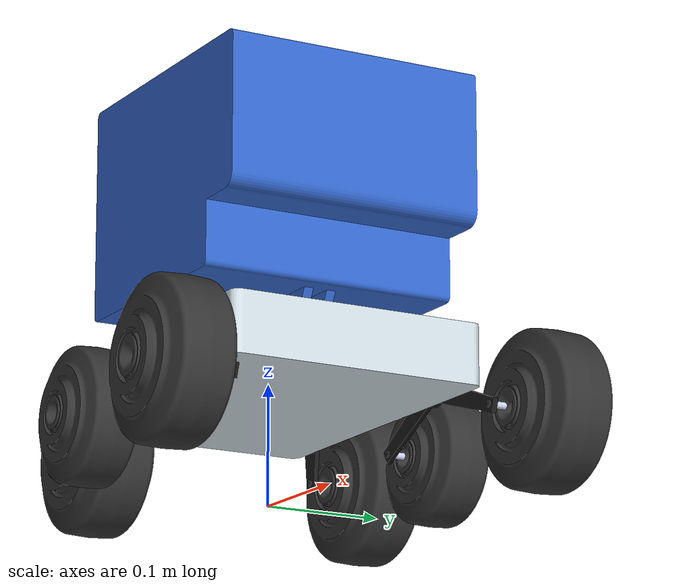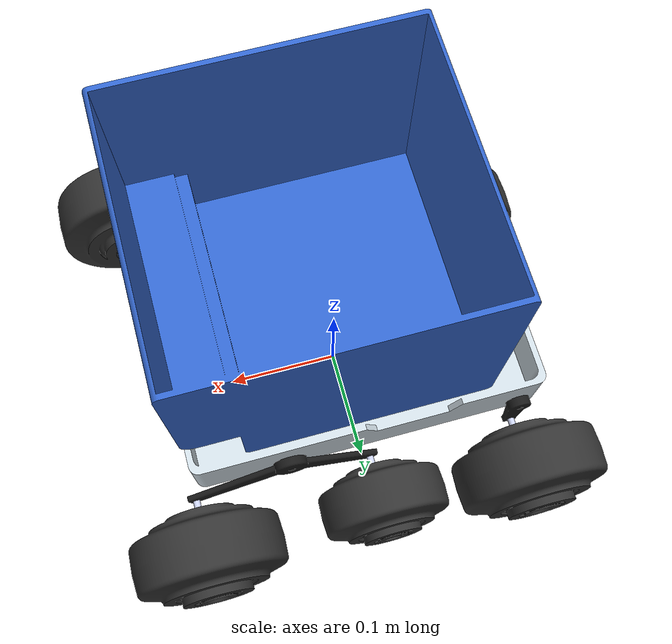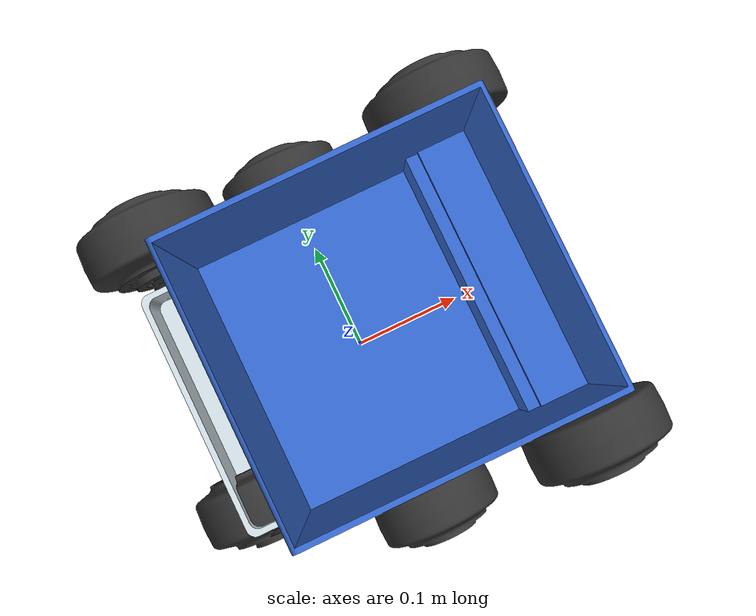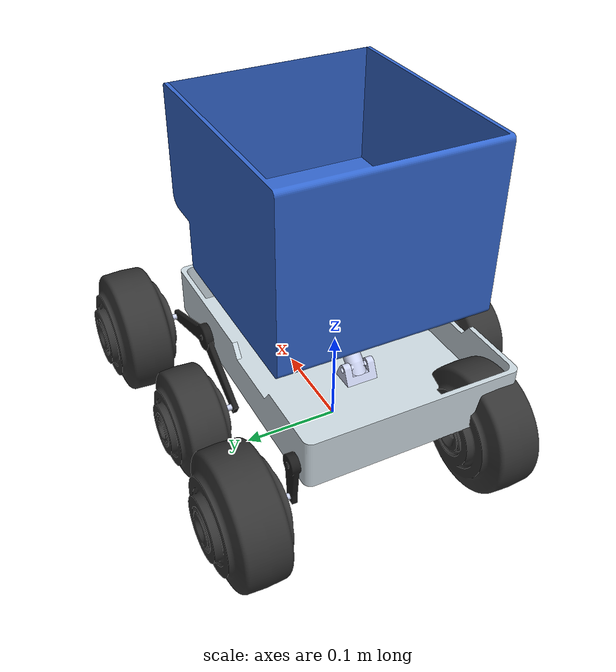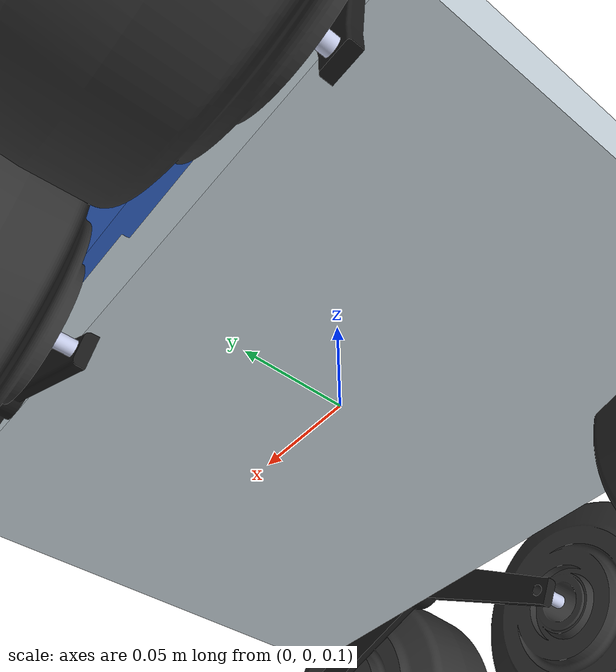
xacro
<?xml version="1.0" encoding="utf-8"?>
<robot name="amr" xmlns:xacro="http://ros.org/wiki/xacro">

<xacro:include filename="$(find amr_description)/urdf/amr_gazebo.xacro" />
<xacro:include filename="$(find amr_description)/urdf/amr_ros2_control.xacro" />

  <link name="base_footprint"/>

  <link
    name="base_link">
    <visual>
      <origin
        xyz="0 0 0"
        rpy="0 0 0" />
      <geometry>
        <mesh
          filename="package://amr_description/meshes/base_link.stl" scale="0.001 0.001 0.001"/>
      </geometry>
      <material name="aluminum_silver">
        <color rgba="0.8 0.85 0.88 1.0"/>
      </material>
    </visual>

    <inertial>
      <origin
        xyz="0 6.198e-8 1.241e-2"
        rpy="0 0 0" />
      <mass
        value="1.5" />
      <inertia
        ixx="8.726e-3"
        ixy="-6.235e-9"
        ixz="3.0913613e-5"
        iyy="1.528e-2"
        iyz="-0.537e-9"
        izz="2.338e-2" />
    </inertial>

  </link>

  <joint name="base_footprint_to_base_link" type="fixed">
    <parent link="base_footprint"/>
    <child link="base_link"/>
    <origin xyz="0.00037 0 0.0803" rpy="0 0 0"/>
  </joint>

  <link
    name="front_link_right_side">
    <visual>
      <origin
        xyz="0 0 0"
        rpy="1.57 -0.071813801 0" />
      <geometry>
        <mesh
          filename="package://amr_description/meshes/front_link_right_side.stl" scale="0.001 0.001 0.001"/>
      </geometry>
      <material name="connector_black">
        <color rgba="0.1 0.1 0.1 1.0"/>
      </material>
    </visual>

    <collision>
      <origin
        xyz="0 0 0"
        rpy="1.57 -0.071813801 0" />
      <geometry>
        <mesh
          filename="package://amr_description/meshes/front_link_right_side.stl" scale="0.001 0.001 0.001" />
      </geometry>
    </collision>

    <inertial>
      <origin
        xyz="3.742e-3 -3.947e-3 -13.785e-3"
        rpy="0 0 0" />
      <mass
        value="42.207e-3" />
      <inertia
        ixx="6.947405e-6"
        ixy="-0.158e-9"
        ixz="1.913789e-6"
        iyy="7.4644517e-5"
        iyz="0.883e-9"
        izz="6.7918278e-5" />
    </inertial>

  </link>

  <joint name="front_right_link_revolute" type="revolute">
    <parent link="base_link"/>
    <child link="front_link_right_side"/>
    <origin xyz="0.068501 -0.11 0.01414" rpy="0 0 0"/>
    <axis xyz="0 1 0"/>
    <limit
      lower="-1.13446"
      upper="0.750492"
      effort="10000000"
      velocity="10000000" />
    <dynamics
      damping="0.1"
      friction="0.2" />
  </joint>

  <link
    name="front_link_left_side">
    <visual>
      <origin
        xyz="0 0 0"
        rpy="0 -0.071813801 0" />
      <geometry>
        <mesh
          filename="package://amr_description/meshes/front_link_left_side.stl" scale="0.001 0.001 0.001"/>
      </geometry>
      <material name="connector_black">
        <color rgba="0.1 0.1 0.1 1.0"/> <!-- Matte black -->
      </material>
    </visual>

    <collision>
      <origin
        xyz="0 0 0"
        rpy="0 -0.071813801 0" />
      <geometry>
        <mesh
          filename="package://amr_description/meshes/front_link_left_side.stl" scale="0.001 0.001 0.001" />
      </geometry>
    </collision>

    <inertial>
      <origin
        xyz="3.742e-3 3.947e-3 -13.785e-3"
        rpy="0 0 0" />
      <mass
        value="42.207e-3" />
      <inertia
        ixx="6.947405e-6"
        ixy="-0.158e-9"
        ixz="1.913789e-6"
        iyy="7.4644517e-5"
        iyz="0.883e-9"
        izz="6.7918278e-5" />
    </inertial>
  </link>

  <joint name="front_left_link_revolute" type="revolute">
    <parent link="base_link"/>
    <child link="front_link_left_side"/>
    <origin xyz="0.068501 0.11 0.01414" rpy="0 0 0"/>
    <axis xyz="0 1 0"/>
    <limit
      lower="-1.13446"
      upper="0.750492"
      effort="10000000"
      velocity="10000000" />
    <dynamics
      damping="0.1"
      friction="0.2" />
  </joint>

  <link
    name="back_link_left_side">
    <visual>
      <origin
        xyz="0 0 0"
        rpy="0 0 0" />
      <geometry>
        <mesh
          filename="package://amr_description/meshes/back_link_left_side.stl" scale="0.001 0.001 0.001"/>
      </geometry>
      <material name="connector_black">
        <color rgba="0.1 0.1 0.1 1.0"/>
      </material>
    </visual>

    <collision>
      <origin
        xyz="0 0 0"
        rpy="0 0 0" />
      <geometry>
        <mesh
          filename="package://amr_description/meshes/back_link_left_side.stl" scale="0.001 0.001 0.001" />
      </geometry>
    </collision>

    <inertial>
      <origin
        xyz="2.151e-10 3.981e-3 -11.017e-3"
        rpy="0 0 0" />
      <mass
        value="12.076e-3" />
      <inertia
        ixx="2.205e-6"
        ixy="-4.149e-18"
        ixz="3.479e-14"
        iyy="2.451457e-6"
        iyz="0.434e-9"
        izz="3.35403e-7" />
    </inertial>
  </link>

  <joint name="back_left_link_revolute" type="fixed">
    <parent link="base_link"/>
    <child link="back_link_left_side"/>
    <origin xyz="-0.131499 0.11 0.01414" rpy="0 0 0"/>
  </joint>

  <link
    name="back_link_right_side">
    <visual>
      <origin
        xyz="0 0 0"
        rpy="0 0 0" />
      <geometry>
        <mesh
          filename="package://amr_description/meshes/back_link_right_side.stl" scale="0.001 0.001 0.001"/>
      </geometry>
      <material name="connector_black">
        <color rgba="0.1 0.1 0.1 1.0"/>
      </material>
    </visual>

    <collision>
      <origin
        xyz="0 0 0"
        rpy="0 0 0" />
      <geometry>
        <mesh
          filename="package://amr_description/meshes/back_link_right_side.stl" scale="0.001 0.001 0.001" />
      </geometry>
    </collision>

    <inertial>
      <origin
        xyz="-2.151e-10 -3.981e-3 -11.017e-3"
        rpy="0 0 0" />
      <mass
        value="12.076e-3" />
      <inertia
        ixx="2.205e-6"
        ixy="-4.149e-18"
        ixz="-3.479e-14"
        iyy="2.451457e-6"
        iyz="-0.434e-9"
        izz="3.35403e-7" />
    </inertial>

  </link>

  <joint name="back_right_link_revolute" type="fixed">
    <parent link="base_link"/>
    <child link="back_link_right_side"/>
    <origin xyz="-0.131499 -0.11 0.01414" rpy="0 0 0"/>
  </joint>

  <link
    name="front_right_connector">
    <visual>
      <origin
        xyz="0 0 0"
        rpy="0 0 0" />
      <geometry>
        <mesh
          filename="package://amr_description/meshes/wconnector_right_side.stl" scale="0.001 0.001 0.001"/>
      </geometry>
      <material
        name="">
        <color
          rgba="0.792156862745098 0.819607843137255 0.933333333333333 1" />
      </material>
    </visual>

    <collision>
      <origin
        xyz="0 0 0"
        rpy="0 0 0" />
      <geometry>
        <mesh
          filename="package://amr_description/meshes/wconnector_right_side.stl" scale="0.001 0.001 0.001" />
      </geometry>
    </collision>

    <inertial>
      <origin
        xyz="0 -0.005 0"
        rpy="0 0 0" />
      <mass
        value="12.076e-3" />
      <inertia
        ixx="2.205e-6"
        ixy="-4.149e-18"
        ixz="-3.479e-14"
        iyy="2.451457e-6"
        iyz="-0.434e-9"
        izz="3.35403e-7" />
    </inertial>

  </link>

  <joint name="front_right_link_connector_joint" type="revolute">
    <parent link="front_link_right_side"/>
    <child link="front_right_connector"/>
    <origin xyz="0.085041 -0.0065 -0.029463" rpy="0 0 0"/>
    <axis xyz="0 0 1"/>
      <limit
        lower = "-3.14"
        upper = "3.14"
        effort="10000000"
        velocity="10000000" />
      <dynamics
        damping="0.0"
        friction="0.2" />
  </joint>

  <link
    name="middle_right_connector">
    <visual>
      <origin
        xyz="0 0 0"
        rpy="0 0 0" />
      <geometry>
        <mesh
          filename="package://amr_description/meshes/wconnector_right_side.stl" scale="0.001 0.001 0.001"/>
      </geometry>
      <material
        name="">
        <color
          rgba="0.792156862745098 0.819607843137255 0.933333333333333 1" />
      </material>
    </visual>

    <collision>
      <origin
        xyz="0 0 0"
        rpy="0 0 0" />
      <geometry>
        <mesh
          filename="package://amr_description/meshes/wconnector_right_side.stl" scale="0.001 0.001 0.001" />
      </geometry>
    </collision>

    <inertial>
      <origin
        xyz="0 -0.005 0"
        rpy="0 0 0" />
      <mass
        value="12.076e-3" />
      <inertia
        ixx="2.205e-6"
        ixy="-4.149e-18"
        ixz="-3.479e-14"
        iyy="2.451457e-6"
        iyz="-0.434e-9"
        izz="3.35403e-7" />
    </inertial>

  </link>

  <joint name="middle_right_link_connector_joint" type="fixed">
    <parent link="front_link_right_side"/>
    <child link="middle_right_connector"/>
    <origin xyz="-0.069638 -0.0065 -0.039441" rpy="0 0 0"/>
  </joint>

  <link
    name="back_right_connector">
    <visual>
      <origin
        xyz="0 0 0"
        rpy="0 0 0" />
      <geometry>
        <mesh
          filename="package://amr_description/meshes/wconnector_right_side.stl" scale="0.001 0.001 0.001"/>
      </geometry>
      <material
        name="">
        <color
          rgba="0.792156862745098 0.819607843137255 0.933333333333333 1" />
      </material>
    </visual>

    <collision>
      <origin
        xyz="0 0 0"
        rpy="0 0 0" />
      <geometry>
        <mesh
          filename="package://amr_description/meshes/wconnector_right_side.stl" scale="0.001 0.001 0.001" />
      </geometry>
    </collision>

    <inertial>
      <origin
        xyz="0 -0.005 0"
        rpy="0 0 0" />
      <mass
        value="12.076e-3" />
      <inertia
        ixx="2.205e-6"
        ixy="-4.149e-18"
        ixz="-3.479e-14"
        iyy="2.451457e-6"
        iyz="-0.434e-9"
        izz="3.35403e-7" />
    </inertial>

  </link>

  <joint name="back_right_link_connector_joint" type="revolute">
    <parent link="back_link_right_side"/>
    <child link="back_right_connector"/>
    <origin xyz="0 -0.0065 -0.039441" rpy="0 0 0"/>
    <axis xyz="0 0 1"/>
      <limit
        lower = "-3.14"
        upper = "3.14"
        effort="10000000"
        velocity="10000000" />
      <dynamics
        damping="0.0"
        friction="0.2" />
  </joint>

  <link
    name="front_left_connector">
    <visual>
      <origin
        xyz="0 0 0"
        rpy="0 0 0" />
      <geometry>
        <mesh
          filename="package://amr_description/meshes/wconnector_left_side.stl" scale="0.001 0.001 0.001"/>
      </geometry>
      <material
        name="">
        <color
          rgba="0.792156862745098 0.819607843137255 0.933333333333333 1" />
      </material>
    </visual>

    <collision>
      <origin
        xyz="0 0 0"
        rpy="0 0 0" />
      <geometry>
        <mesh
          filename="package://amr_description/meshes/wconnector_left_side.stl" scale="0.001 0.001 0.001" />
      </geometry>
    </collision>

    <inertial>
      <origin
        xyz="0 0.005 0"
        rpy="0 0 0" />
      <mass
        value="12.076e-3" />
      <inertia
        ixx="2.205e-6"
        ixy="-4.149e-18"
        ixz="-3.479e-14"
        iyy="2.451457e-6"
        iyz="-0.434e-9"
        izz="3.35403e-7" />
    </inertial>

  </link>

  <joint name="front_left_link_connector_joint" type="revolute">
    <parent link="front_link_left_side"/>
    <child link="front_left_connector"/>
    <origin xyz="0.085041 0.0065 -0.029463" rpy="0 0 0"/>
    <axis xyz="0 0 1"/>
      <limit
        lower = "-3.14"
        upper = "3.14"
        effort="10000000"
        velocity="10000000" />
      <dynamics
        damping="0.0"
        friction="0.2" />
  </joint>

  <link
    name="middle_left_connector">
    <visual>
      <origin
        xyz="0 0 0"
        rpy="0 0 0" />
      <geometry>
        <mesh
          filename="package://amr_description/meshes/wconnector_left_side.stl" scale="0.001 0.001 0.001"/>
      </geometry>
      <material
        name="">
        <color
          rgba="0.792156862745098 0.819607843137255 0.933333333333333 1" />
      </material>
    </visual>

    <collision>
      <origin
        xyz="0 0 0"
        rpy="0 0 0" />
      <geometry>
        <mesh
          filename="package://amr_description/meshes/wconnector_left_side.stl" scale="0.001 0.001 0.001" />
      </geometry>
    </collision>

    <inertial>
      <origin
        xyz="0 0.005 0"
        rpy="0 0 0" />
      <mass
        value="12.076e-3" />
      <inertia
        ixx="2.205e-6"
        ixy="-4.149e-18"
        ixz="-3.479e-14"
        iyy="2.451457e-6"
        iyz="-0.434e-9"
        izz="3.35403e-7" />
    </inertial>

  </link>

  <joint name="middle_left_link_connector_joint" type="fixed">
    <parent link="front_link_left_side"/>
    <child link="middle_left_connector"/>
    <origin xyz="-0.069638 0.0065 -0.039441" rpy="0 0 0"/>
  </joint>

  <link
    name="back_left_connector">
    <visual>
      <origin
        xyz="0 0 0"
        rpy="0 0 0" />
      <geometry>
        <mesh
          filename="package://amr_description/meshes/wconnector_left_side.stl" scale="0.001 0.001 0.001"/>
      </geometry>
      <material
        name="">
        <color
          rgba="0.792156862745098 0.819607843137255 0.933333333333333 1" />
      </material>
    </visual>

    <collision>
      <origin
        xyz="0 0 0"
        rpy="0 0 0" />
      <geometry>
        <mesh
          filename="package://amr_description/meshes/wconnector_left_side.stl" scale="0.001 0.001 0.001" />
      </geometry>
    </collision>

    <inertial>
      <origin
        xyz="0 0.005 0"
        rpy="0 0 0" />
      <mass
        value="12.076e-3" />
      <inertia
        ixx="2.205e-6"
        ixy="-4.149e-18"
        ixz="-3.479e-14"
        iyy="2.451457e-6"
        iyz="-0.434e-9"
        izz="3.35403e-7" />
    </inertial>

  </link>

  <joint name="back_left_link_connector_joint" type="revolute">
    <parent link="back_link_left_side"/>
    <child link="back_left_connector"/>
    <origin xyz="0 0.0065 -0.039441" rpy="0 0 0"/>
    <axis xyz="0 0 1"/>
      <limit
        lower = "-3.14"
        upper = "3.14"
        effort="10000000"
        velocity="10000000" />
      <dynamics
        damping="0.0"
        friction="0.2" />
  </joint>

  <link
    name="back_wheel_right_side">
    <visual>
      <origin
        xyz="0 0 0"
        rpy="1.57 0 0" />
      <geometry>
        <mesh
          filename="package://amr_description/meshes/back_wheel_right_side.stl" scale="0.001 0.001 0.001"/>
      </geometry>
      <material name="rubber_black">
        <color rgba="0.2 0.2 0.2 1.0"/>
      </material>
    </visual>

    <collision>
      <origin
        xyz="0 0 0"
        rpy="1.57 0 0" />
      <geometry>
        <mesh
          filename="package://amr_description/meshes/back_wheel_right_side.stl" scale="0.001 0.001 0.001" />
      </geometry>

    </collision>

    <inertial>
      <origin
        xyz="-0.29e-3 -3.1731e-2 0.025e-3"
        rpy="0 0 0" />
      <mass
        value="0.295006" />
      <inertia
        ixx="3.284e-4"
        ixy="-0.003e-9"
        ixz="-45.417e-9"
        iyy="3.679e-4"
        iyz="-6.851e-9"
        izz="3.288e-4" />
    </inertial>
  </link>

  <joint name="back_right_wheel_revolute" type="continuous">
    <parent link="back_right_connector"/>
    <child link="back_wheel_right_side"/>
    <origin xyz="0 -0.010 0" rpy="0 0 0"/>
    <axis xyz="0 1 0"/>
    <limit
      effort="10000000000"
      velocity="10000000" />
    <dynamics
      damping="0.1"
      friction="0.2" />
  </joint>

  <link
    name="back_wheel_left_side">
    <visual>
      <origin
        xyz="0 0 0"
        rpy="1.57 0 0" />
      <geometry>
        <mesh
          filename="package://amr_description/meshes/back_wheel_left_side.stl" scale="0.001 0.001 0.001"/>
      </geometry>
      <material name="rubber_black">
        <color rgba="0.2 0.2 0.2 1.0"/>
      </material>
    </visual>

    <collision>
      <origin
        xyz="0 0 0"
        rpy="1.57 0 0" />
      <geometry>
        <mesh
          filename="package://amr_description/meshes/back_wheel_left_side.stl" scale="0.001 0.001 0.001" />
      </geometry>

    </collision>

    <inertial>
      <origin
        xyz="-0.29e-3 3.1731e-2 0.025e-3"
        rpy="0 0 0" />
      <mass
        value="0.295006" />
      <inertia
        ixx="3.284e-4"
        ixy="-0.003e-9"
        ixz="-45.417e-9"
        iyy="3.679e-4"
        iyz="-6.851e-9"
        izz="3.288e-4" />
    </inertial>
  </link>

  <joint name="back_left_wheel_revolute" type="continuous">
    <parent link="back_left_connector"/>
    <child link="back_wheel_left_side"/>
    <origin xyz="0 0.010 0" rpy="0 0 0"/>
    <axis xyz="0 1 0"/>
    <limit
      effort="10000000000"
      velocity="10000000" />
    <dynamics
      damping="0.1"
      friction="0.2" />
  </joint>

  <link
    name="middle_wheel_left_side">
    <visual>
      <origin
        xyz="0 0 0"
        rpy="1.57 0 0" />
      <geometry>
        <mesh
          filename="package://amr_description/meshes/middle_wheel_left_side.stl" scale="0.001 0.001 0.001"/>
      </geometry>
      <material name="rubber_black">
        <color rgba="0.2 0.2 0.2 1.0"/>
      </material>
    </visual>

    <collision>
      <origin
        xyz="0 0 0"
        rpy="1.57 0 0" />
      <geometry>
        <mesh
          filename="package://amr_description/meshes/middle_wheel_left_side.stl" scale="0.001 0.001 0.001" />
      </geometry>

    </collision>

    <inertial>
      <origin
        xyz="-0.29e-3 3.1731e-2 0.025e-3"
        rpy="0 0 0" />
      <mass
        value="0.295006" />
      <inertia
        ixx="3.284e-4"
        ixy="-0.003e-9"
        ixz="-45.417e-9"
        iyy="3.679e-4"
        iyz="-6.851e-9"
        izz="3.288e-4" />
    </inertial>
  </link>

  <joint name="middle_left_wheel_revolute" type="continuous">
    <parent link="middle_left_connector"/>
    <child link="middle_wheel_left_side"/>
    <origin xyz="0 0.010 0" rpy="0 0 0"/>
    <axis xyz="0 1 0"/>
    <limit
      effort="10000000000"
      velocity="10000000" />
    <dynamics
      damping="0.1"
      friction="0.2" />
  </joint>

  <link
    name="middle_wheel_right_side">
    <visual>
      <origin
        xyz="0 0 0"
        rpy="1.57 0 0" />
      <geometry>
        <mesh
          filename="package://amr_description/meshes/middle_wheel_right_side.stl" scale="0.001 0.001 0.001"/>
      </geometry>
      <material name="rubber_black">
        <color rgba="0.2 0.2 0.2 1.0"/>
      </material>
    </visual>

    <collision>
      <origin
        xyz="0 0 0"
        rpy="1.57 0 0" />
      <geometry>
        <mesh
          filename="package://amr_description/meshes/middle_wheel_right_side.stl" scale="0.001 0.001 0.001" />
      </geometry>

    </collision>

    <inertial>
      <origin
        xyz="-0.29e-3 -3.1731e-2 0.025e-3"
        rpy="0 0 0" />
      <mass
        value="0.295006" />
      <inertia
        ixx="3.284e-4"
        ixy="-0.003e-9"
        ixz="-45.417e-9"
        iyy="3.679e-4"
        iyz="-6.851e-9"
        izz="3.288e-4" />
    </inertial>

  </link>

  <joint name="middle_right_wheel_revolute" type="continuous">
    <parent link="middle_right_connector"/>
    <child link="middle_wheel_right_side"/>
    <origin xyz="0 -0.01 0" rpy="0 0 0"/>
    <axis xyz="0 1 0"/>
    <limit
      effort="10000000000"
      velocity="10000000" />
    <dynamics
      damping="0.1"
      friction="0.2" />
  </joint>

  <link
    name="front_wheel_left_side">
    <visual>
      <origin
        xyz="0 0 0"
        rpy="1.57 0 0" />
      <geometry>
        <mesh
          filename="package://amr_description/meshes/front_wheel_left_side.stl" scale="0.001 0.001 0.001"/>
      </geometry>
      <material name="rubber_black">
        <color rgba="0.2 0.2 0.2 1.0"/>
      </material>
    </visual>

    <collision>
      <origin
        xyz="0 0 0"
        rpy="1.57 0 0" />
      <geometry>
        <mesh
          filename="package://amr_description/meshes/front_wheel_left_side.stl" scale="0.001 0.001 0.001" />
      </geometry>

    </collision>

    <inertial>
      <origin
        xyz="0.004e-3 37.498e-3 -0.025e-3"
        rpy="0 0 0" />
      <mass
        value="0.530" />
      <inertia
        ixx="7.791e-4"
        ixy="-0.013e-9"
        ixz="-1.04741e-7"
        iyy="8.515e-4"
        iyz="2.7531e-8"
        izz="7.801e-4" />
    </inertial>
  </link>

  <joint name="front_left_wheel_revolute" type="continuous">
    <parent link="front_left_connector"/>
    <child link="front_wheel_left_side"/>
    <origin xyz="0 0.010 0" rpy="0 0 0"/>
    <axis xyz="0 1 0"/>
    <limit
      effort="10000000000"
      velocity="10000000" />
    <dynamics
      damping="0.1"
      friction="0.2" />
  </joint>

  <link
    name="front_wheel_right_side">
    <visual>
      <origin
        xyz="0 0 0"
        rpy="1.57 0 0" />
      <geometry>
        <mesh
          filename="package://amr_description/meshes/front_wheel_right_side.stl" scale="0.001 0.001 0.001"/>
      </geometry>
      <material name="rubber_black">
        <color rgba="0.2 0.2 0.2 1.0"/>
      </material>
    </visual>

    <collision>
      <origin
        xyz="0 0 0"
        rpy="1.57 0 0" />
      <geometry>
        <mesh
          filename="package://amr_description/meshes/front_wheel_right_side.stl" scale="0.001 0.001 0.001" />
      </geometry>

    </collision>

    <inertial>
      <origin
        xyz="0.004e-3 -37.498e-3 -0.025e-3"
        rpy="0 0 0" />
      <mass
        value="0.530" />
      <inertia
        ixx="7.791e-4"
        ixy="-0.013e-9"
        ixz="-1.04741e-7"
        iyy="8.515e-4"
        iyz="2.7531e-8"
        izz="7.801e-4" />
    </inertial>

  </link>

  <joint name="front_right_wheel_revolute" type="continuous">
    <parent link="front_right_connector"/>
    <child link="front_wheel_right_side"/>
    <origin xyz="0 -0.01 0" rpy="0 0 0"/>
    <axis xyz="0 1 0"/>
    <limit
      effort="10000000000"
      velocity="10000000" />
    <dynamics
      damping="0.1"
      friction="0.2" />
  </joint>

  <link name="imu_link">
    <inertial>
      <origin xyz="-0.00552433659106688 0.000168210391520346 0.000514000497342681" rpy="0 0 0" />
      <mass value="0.000528415362211671" />
      <inertia ixx="1.46176048428261E-08" ixy="1.40015117949421E-10" ixz="-1.99633872937403E-12"
               iyy="8.59662482954888E-09" iyz="7.52375112767959E-12"
               izz="2.30279421279312E-08" />
    </inertial>
    <visual>
      <origin xyz="0 0 0" rpy="0 0 0" />
      <geometry>
        <box size="0.02 0.02 0.005"/>
      </geometry>
      <material name="black">
				<color rgba="0 0 0 1"/>
			</material>
    </visual>
  </link>

  <joint name="imu_base_joint" type="fixed">
      <parent link="base_link"/>
      <child link="imu_link"/>
      <origin xyz="0.00037 0 0.005" rpy="0 0 0"/>
      <axis xyz="0 0 0"/>
  </joint>

<link
    name="connector">
    <visual>
      <origin
        xyz="0 0 0"
        rpy="0 0 0" />
      <geometry>
        <mesh
          filename="package://amr_description/meshes/connector.stl" scale="0.001 0.001 0.001"/>
      </geometry>
      <material
        name="">
        <color
          rgba="0.792156862745098 0.819607843137255 0.933333333333333 1" />
      </material>
    </visual>
    <collision>
      <origin
        xyz="0 0 0"
        rpy="0 0 0" />
      <geometry>
        <mesh
          filename="package://amr_description/meshes/connector.stl" scale="0.001 0.001 0.001" />
      </geometry>
    </collision>
  </link>

  <joint name="connector_base_joint" type="fixed">
      <parent link="base_link"/>
      <child link="connector"/>
      <origin xyz="0.0685 0 0.022079" rpy="0 0 0"/>
      <axis xyz="0 0 0"/>
  </joint>

  <link
    name="prism_bottom_tab">
    <visual>
      <origin
        xyz="0 0 0"
        rpy="0 0 0" />
      <geometry>
        <mesh
          filename="package://amr_description/meshes/prism_bottom_tab.stl" scale="0.001 0.001 0.001"/>
      </geometry>
      <material
        name="">
        <color
          rgba="0.792156862745098 0.819607843137255 0.933333333333333 1" />
      </material>
    </visual>
  </link>

  <joint name="prism_bottom_tab_base_joint" type="fixed">
      <parent link="base_link"/>
      <child link="prism_bottom_tab"/>
      <origin xyz="-0.045604 0 0.005" rpy="0 0 0"/>
      <axis xyz="0 0 0"/>
  </joint>

  <link
    name="prismatic_joint_bottom_hc">
    <visual>
      <origin
        xyz="0 0 0"
        rpy="0 0 0" />
      <geometry>
        <mesh
          filename="package://amr_description/meshes/prismatic_joint_bottom_hc.stl" scale="0.001 0.001 0.001"/>
      </geometry>
      <material
        name="">
        <color
          rgba="0.792156862745098 0.819607843137255 0.933333333333333 1" />
      </material>
    </visual>
  </link>

  <joint name="hc_bt_joint" type="fixed">
      <parent link="prism_bottom_tab"/>
      <child link="prismatic_joint_bottom_hc"/>
      <origin xyz="0 0 0.012809" rpy="0 0 0"/>
  </joint>

  <link
    name="prismatic_joint_top_sc">
    <visual>
      <origin
        xyz="0 0 0"
        rpy="0 0.7382 0" />
      <geometry>
        <mesh
          filename="package://amr_description/meshes/prismatic_joint_top_sc.stl" scale="0.001 0.001 0.001"/>
      </geometry>
      <material
        name="">
        <color
          rgba="0.792156862745098 0.819607843137255 0.933333333333333 1" />
      </material>
    </visual>
  </link>

  <joint name="sc_hc_joint" type="fixed">
      <parent link="prismatic_joint_bottom_hc"/>
      <child link="prismatic_joint_top_sc"/>
      <origin xyz="0.011825 0 0.005501" rpy="0 -0.7382 0"/>
      <!--limit effort="1000.0" lower="0.0" upper="0.05" velocity="0.5"/-->

  </joint>

  <link
    name="prism_top_tab">
    <visual>
      <origin
        xyz="0 0 0"
        rpy="0 0 0" />
      <geometry>
        <mesh
          filename="package://amr_description/meshes/prism_top_tab.stl" scale="0.001 0.001 0.001"/>
      </geometry>
      <material
        name="">
        <color
          rgba="0.792156862745098 0.819607843137255 0.933333333333333 1" />
      </material>
    </visual>
  </link>

  <joint name="top_tab_sc_joint" type="fixed">
      <parent link="prismatic_joint_top_sc"/>
      <child link="prism_top_tab"/>
      <origin xyz="0.068867 0 -0.004082" rpy="0 0.7382 0"/>
  </joint>

  <link
    name="delivery_box">
    <visual>
      <origin
        xyz="0 0 0"
        rpy="0 0 0" />
      <geometry>
        <mesh
          filename="package://amr_description/meshes/delivery_box_wol.stl" scale="0.001 0.001 0.001"/>
      </geometry>
      <material name="delivery_box_blue">
        <color rgba="0.2 0.4 0.8 1.0"/>  <!-- A strong cobalt blue -->
      </material>
    </visual>
    <collision>
      <origin
        xyz="0 0 0"
        rpy="0 0 0" />
      <geometry>
        <mesh
          filename="package://amr_description/meshes/delivery_box_wol.stl" scale="0.001 0.001 0.001" />
      </geometry>
    </collision>
    <inertial>
      <origin
        xyz="0.045 0 0.03"
        rpy="0 0 0" />
      <mass
        value="0.000000001" />
      <inertia
        ixx="7.791e-4"
        ixy="-0.013e-9"
        ixz="-1.04741e-7"
        iyy="8.515e-4"
        iyz="2.7531e-8"
        izz="7.801e-4" />
    </inertial>
  </link>

  <joint name="del_box_connector" type="revolute">
      <parent link="connector"/>
      <child link="delivery_box"/>
      <origin xyz="0 0 0.039994" rpy="0 0 0"/>
      <axis xyz="0 1 0"/>
      <limit
        lower="-0.0873"
        upper="0.890118"
        effort="10000000"
        velocity="10000000" />
      <dynamics
        damping="0.0"
        friction="0.2" />
  </joint>

</robot>
